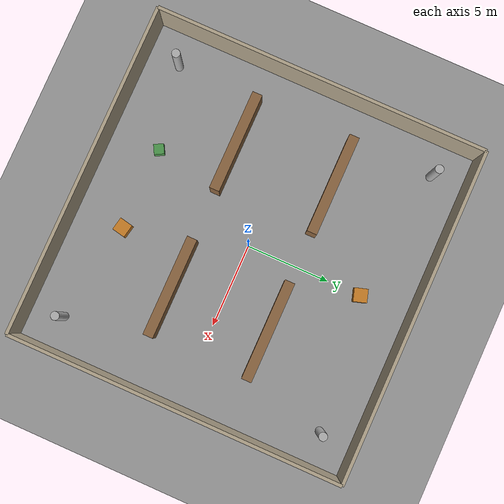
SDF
<?xml version="1.0" ?>
<sdf version="1.10">
  <world name="warehouse">

    <physics name="1ms" type="ode">
      <!-- FIX: smaller timestep = more stable contact resolution -->
      <max_step_size>0.001</max_step_size>
      <real_time_factor>1.0</real_time_factor>
      <real_time_update_rate>1000</real_time_update_rate>
      <ode>
        <solver>
          <type>quick</type>
          <!-- FIX: more iterations = contacts converge properly each step -->
          <iters>150</iters>
          <sor>1.3</sor>             <!-- successive over-relaxation factor -->
          <precon_iters>0</precon_iters>
        </solver>
        <constraints>
          <!-- FIX: tight CFM/ERP keeps wheels planted on ground -->
          <cfm>0.0</cfm>             <!-- constraint force mixing — 0 = rigid -->
          <erp>0.2</erp>             <!-- error reduction parameter -->
          <contact_max_correcting_vel>100.0</contact_max_correcting_vel>
          <contact_surface_layer>0.001</contact_surface_layer>
        </constraints>
      </ode>
    </physics>

    <!-- ─── System plugins ─── -->
    <plugin filename="gz-sim-physics-system" name="gz::sim::systems::Physics">
      <engine><filename>gz-physics-dartsim-plugin</filename></engine>
    </plugin>
    <plugin filename="gz-sim-user-commands-system"   name="gz::sim::systems::UserCommands"/>
    <plugin filename="gz-sim-scene-broadcaster-system" name="gz::sim::systems::SceneBroadcaster"/>
    <plugin filename="gz-sim-sensors-system"          name="gz::sim::systems::Sensors">
      <render_engine>ogre2</render_engine>
    </plugin>
    <plugin filename="gz-sim-contact-system"          name="gz::sim::systems::Contact"/>

    <!-- ─── Lighting ─── -->
    <light type="directional" name="sun">
      <cast_shadows>true</cast_shadows>
      <pose>0 0 10 0 0 0</pose>
      <diffuse>0.8 0.8 0.8 1</diffuse>
      <specular>0.2 0.2 0.2 1</specular>
      <attenuation>
        <range>1000</range>
        <constant>0.9</constant>
        <linear>0.01</linear>
        <quadratic>0.001</quadratic>
      </attenuation>
      <direction>-0.5 0.1 -0.9</direction>
    </light>

    <scene>
      <ambient>0.6 0.6 0.6 1</ambient>
      <background>0.3 0.3 0.3 1</background>
      <shadows>true</shadows>
    </scene>

    <model name="ground_plane">
      <static>true</static>
      <link name="link">
        <collision name="collision">
          <geometry>
            <plane><normal>0 0 1</normal><size>50 50</size></plane>
          </geometry>
          <!-- FIX: explicit high-friction surface on the ground -->
          <surface>
            <friction>
              <ode>
                <mu>5.0</mu>      <!-- must be >= wheel mu so wheel is the limit -->
                <mu2>5.0</mu2>
                <slip1>0.0</slip1>
                <slip2>0.0</slip2>
              </ode>
              <torsional>
                <coefficient>0.001</coefficient>
                <ode><slip>0.0</slip></ode>
              </torsional>
            </friction>
            <contact>
              <ode>
                <kp>10000000.0</kp>  <!-- stiff ground = no sinking -->
                <kd>10.0</kd>
                <min_depth>0.001</min_depth>
                <max_vel>0.01</max_vel>
              </ode>
            </contact>
          </surface>
        </collision>
        <visual name="visual">
          <geometry>
            <plane><normal>0 0 1</normal><size>50 50</size></plane>
          </geometry>
          <material>
            <ambient>0.5 0.5 0.5 1</ambient>
            <diffuse>0.6 0.6 0.6 1</diffuse>
          </material>
        </visual>
      </link>
    </model>

    <!-- ═══════════════ Warehouse Walls ═══════════════ -->
    <model name="warehouse_walls">
      <static>true</static>
      <link name="walls">
        <collision name="north_wall_col"><pose>0 10 1.5 0 0 0</pose>
          <geometry><box><size>20 0.2 3</size></box></geometry></collision>
        <visual name="north_wall_vis"><pose>0 10 1.5 0 0 0</pose>
          <geometry><box><size>20 0.2 3</size></box></geometry>
          <material><ambient>0.6 0.55 0.45 1</ambient><diffuse>0.7 0.65 0.55 1</diffuse></material></visual>

        <collision name="south_wall_col"><pose>0 -10 1.5 0 0 0</pose>
          <geometry><box><size>20 0.2 3</size></box></geometry></collision>
        <visual name="south_wall_vis"><pose>0 -10 1.5 0 0 0</pose>
          <geometry><box><size>20 0.2 3</size></box></geometry>
          <material><ambient>0.6 0.55 0.45 1</ambient><diffuse>0.7 0.65 0.55 1</diffuse></material></visual>

        <collision name="east_wall_col"><pose>10 0 1.5 0 0 0</pose>
          <geometry><box><size>0.2 20 3</size></box></geometry></collision>
        <visual name="east_wall_vis"><pose>10 0 1.5 0 0 0</pose>
          <geometry><box><size>0.2 20 3</size></box></geometry>
          <material><ambient>0.6 0.55 0.45 1</ambient><diffuse>0.7 0.65 0.55 1</diffuse></material></visual>

        <collision name="west_wall_col"><pose>-10 0 1.5 0 0 0</pose>
          <geometry><box><size>0.2 20 3</size></box></geometry></collision>
        <visual name="west_wall_vis"><pose>-10 0 1.5 0 0 0</pose>
          <geometry><box><size>0.2 20 3</size></box></geometry>
          <material><ambient>0.6 0.55 0.45 1</ambient><diffuse>0.7 0.65 0.55 1</diffuse></material></visual>
      </link>
    </model>

    <!-- ═══════════════ Shelving Units ═══════════════ -->
    <model name="shelf_row1">
      <static>true</static>
      <link name="link">
        <collision name="col"><pose>-5 3 1 0 0 0</pose>
          <geometry><box><size>6 0.6 2</size></box></geometry></collision>
        <visual name="vis"><pose>-5 3 1 0 0 0</pose>
          <geometry><box><size>6 0.6 2</size></box></geometry>
          <material><ambient>0.4 0.3 0.2 1</ambient><diffuse>0.55 0.4 0.25 1</diffuse></material></visual>
      </link>
    </model>

    <model name="shelf_row2">
      <static>true</static>
      <link name="link">
        <collision name="col"><pose>-5 -3 1 0 0 0</pose>
          <geometry><box><size>6 0.6 2</size></box></geometry></collision>
        <visual name="vis"><pose>-5 -3 1 0 0 0</pose>
          <geometry><box><size>6 0.6 2</size></box></geometry>
          <material><ambient>0.4 0.3 0.2 1</ambient><diffuse>0.55 0.4 0.25 1</diffuse></material></visual>
      </link>
    </model>

    <model name="shelf_row3">
      <static>true</static>
      <link name="link">
        <collision name="col"><pose>4 3 1 0 0 0</pose>
          <geometry><box><size>6 0.6 2</size></box></geometry></collision>
        <visual name="vis"><pose>4 3 1 0 0 0</pose>
          <geometry><box><size>6 0.6 2</size></box></geometry>
          <material><ambient>0.4 0.3 0.2 1</ambient><diffuse>0.55 0.4 0.25 1</diffuse></material></visual>
      </link>
    </model>

    <model name="shelf_row4">
      <static>true</static>
      <link name="link">
        <collision name="col"><pose>4 -3 1 0 0 0</pose>
          <geometry><box><size>6 0.6 2</size></box></geometry></collision>
        <visual name="vis"><pose>4 -3 1 0 0 0</pose>
          <geometry><box><size>6 0.6 2</size></box></geometry>
          <material><ambient>0.4 0.3 0.2 1</ambient><diffuse>0.55 0.4 0.25 1</diffuse></material></visual>
      </link>
    </model>

    <!-- ═══════════════ Pillars ═══════════════ -->
    <model name="pillar1">
      <static>true</static>
      <link name="link">
        <collision name="col"><pose>-8 8 1.5 0 0 0</pose>
          <geometry><cylinder><radius>0.25</radius><length>3</length></cylinder></geometry></collision>
        <visual name="vis"><pose>-8 8 1.5 0 0 0</pose>
          <geometry><cylinder><radius>0.25</radius><length>3</length></cylinder></geometry>
          <material><ambient>0.5 0.5 0.5 1</ambient><diffuse>0.7 0.7 0.7 1</diffuse></material></visual>
      </link>
    </model>
    <model name="pillar2">
      <static>true</static>
      <link name="link">
        <collision name="col"><pose>8 8 1.5 0 0 0</pose>
          <geometry><cylinder><radius>0.25</radius><length>3</length></cylinder></geometry></collision>
        <visual name="vis"><pose>8 8 1.5 0 0 0</pose>
          <geometry><cylinder><radius>0.25</radius><length>3</length></cylinder></geometry>
          <material><ambient>0.5 0.5 0.5 1</ambient><diffuse>0.7 0.7 0.7 1</diffuse></material></visual>
      </link>
    </model>
    <model name="pillar3">
      <static>true</static>
      <link name="link">
        <collision name="col"><pose>-8 -8 1.5 0 0 0</pose>
          <geometry><cylinder><radius>0.25</radius><length>3</length></cylinder></geometry></collision>
        <visual name="vis"><pose>-8 -8 1.5 0 0 0</pose>
          <geometry><cylinder><radius>0.25</radius><length>3</length></cylinder></geometry>
          <material><ambient>0.5 0.5 0.5 1</ambient><diffuse>0.7 0.7 0.7 1</diffuse></material></visual>
      </link>
    </model>
    <model name="pillar4">
      <static>true</static>
      <link name="link">
        <collision name="col"><pose>8 -8 1.5 0 0 0</pose>
          <geometry><cylinder><radius>0.25</radius><length>3</length></cylinder></geometry></collision>
        <visual name="vis"><pose>8 -8 1.5 0 0 0</pose>
          <geometry><cylinder><radius>0.25</radius><length>3</length></cylinder></geometry>
          <material><ambient>0.5 0.5 0.5 1</ambient><diffuse>0.7 0.7 0.7 1</diffuse></material></visual>
      </link>
    </model>

    <!-- ═══════════════ Boxes / Crates ═══════════════ -->
    <model name="crate1">
      <static>true</static>
      <link name="link">
        <collision name="col"><pose>0 7 0.4 0 0 0.3</pose>
          <geometry><box><size>0.8 0.8 0.8</size></box></geometry></collision>
        <visual name="vis"><pose>0 7 0.4 0 0 0.3</pose>
          <geometry><box><size>0.8 0.8 0.8</size></box></geometry>
          <material><ambient>0.6 0.4 0.1 1</ambient><diffuse>0.8 0.5 0.15 1</diffuse></material></visual>
      </link>
    </model>
    <model name="crate2">
      <static>true</static>
      <link name="link">
        <collision name="col"><pose>2 -7 0.4 0 0 -0.2</pose>
          <geometry><box><size>0.8 0.8 0.8</size></box></geometry></collision>
        <visual name="vis"><pose>2 -7 0.4 0 0 -0.2</pose>
          <geometry><box><size>0.8 0.8 0.8</size></box></geometry>
          <material><ambient>0.6 0.4 0.1 1</ambient><diffuse>0.8 0.5 0.15 1</diffuse></material></visual>
      </link>
    </model>
    <model name="crate3">
      <static>true</static>
      <link name="link">
        <collision name="col"><pose>-3 -7 0.3 0 0 0.5</pose>
          <geometry><box><size>0.6 0.6 0.6</size></box></geometry></collision>
        <visual name="vis"><pose>-3 -7 0.3 0 0 0.5</pose>
          <geometry><box><size>0.6 0.6 0.6</size></box></geometry>
          <material><ambient>0.2 0.4 0.2 1</ambient><diffuse>0.3 0.6 0.3 1</diffuse></material></visual>
      </link>
    </model>

  </world>
</sdf>
